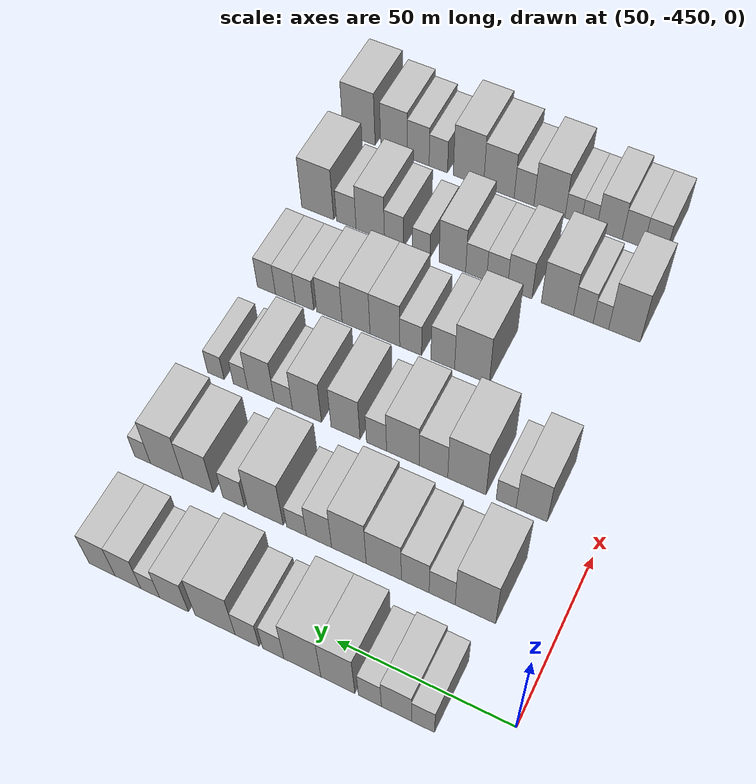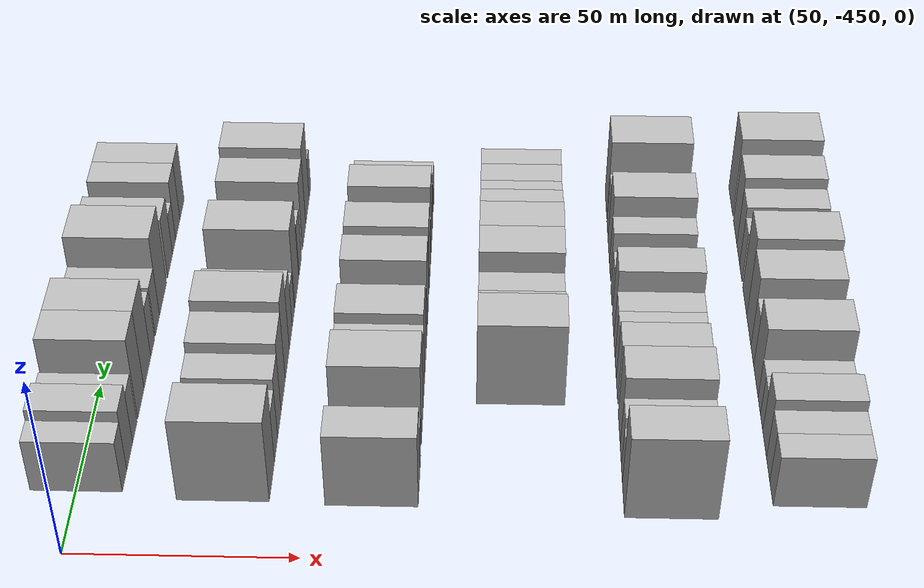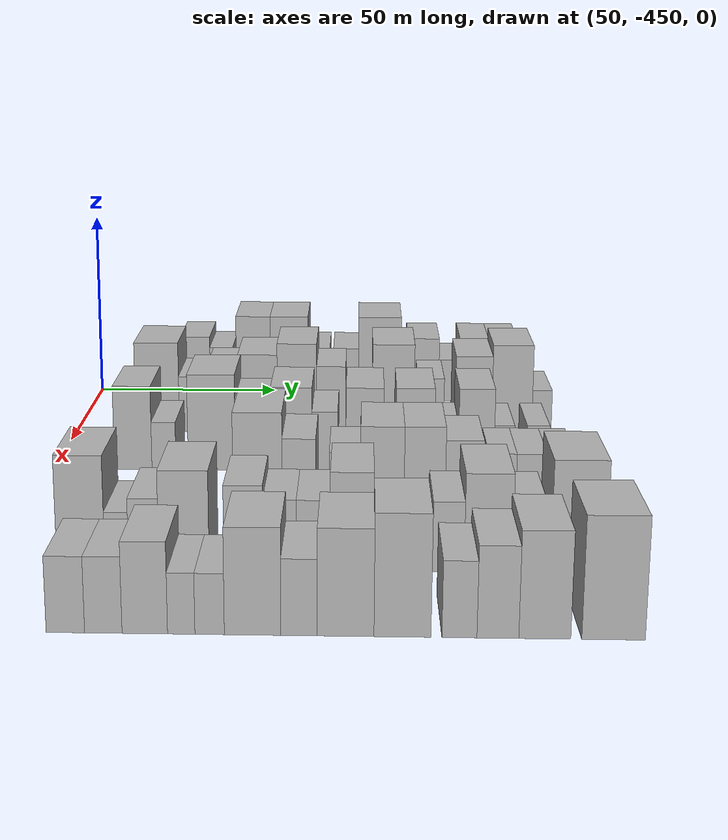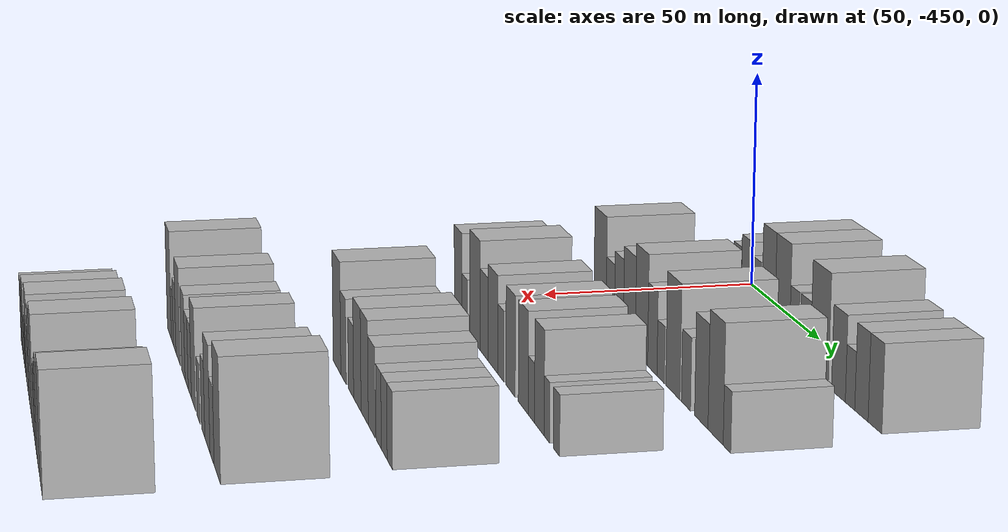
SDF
<sdf version="1.6">
 <world name="default">
  <model name="building_12">
   <static>1</static>
   <pose>50.0000 -429.1963 0 0.000000 0.000000 0.000000</pose>
   <link name="link">
    <pose>0 0 7.50 0 0 0</pose>
    <collision name="collision"><geometry><box><size>20.0000 6.3215 15.0000</size></box></geometry></collision>
    <visual name="visual">
     <cast_shadows>0</cast_shadows>
     <geometry><box><size>20.0000 6.3215 15.0000</size></box></geometry>
     <material>
      <script>
       <uri>model://HANNAS_wall/materials/scripts</uri>
       <uri>model://HANNAS_wall/materials/textures</uri>
       <name>vrc/HANNAS_wall</name>
      </script>
     </material>
    </visual>
   </link>
  </model>
  <model name="building_13">
   <static>1</static>
   <pose>50.0000 -421.8779 0 0.000000 0.000000 0.000000</pose>
   <link name="link">
    <pose>0 0 9.00 0 0 0</pose>
    <collision name="collision"><geometry><box><size>20.0000 8.3153 18.0000</size></box></geometry></collision>
    <visual name="visual">
     <cast_shadows>0</cast_shadows>
     <geometry><box><size>20.0000 8.3153 18.0000</size></box></geometry>
     <material>
      <script>
       <uri>model://HANNAS_wall/materials/scripts</uri>
       <uri>model://HANNAS_wall/materials/textures</uri>
       <name>vrc/HANNAS_wall</name>
      </script>
     </material>
    </visual>
   </link>
  </model>
  <model name="building_14">
   <static>1</static>
   <pose>50.0000 -414.5161 0 0.000000 0.000000 0.000000</pose>
   <link name="link">
    <pose>0 0 7.50 0 0 0</pose>
    <collision name="collision"><geometry><box><size>20.0000 6.4083 15.0000</size></box></geometry></collision>
    <visual name="visual">
     <cast_shadows>0</cast_shadows>
     <geometry><box><size>20.0000 6.4083 15.0000</size></box></geometry>
     <material>
      <script>
       <uri>model://HANNAS_wall/materials/scripts</uri>
       <uri>model://HANNAS_wall/materials/textures</uri>
       <name>vrc/HANNAS_wall</name>
      </script>
     </material>
    </visual>
   </link>
  </model>
  <model name="building_15">
   <static>1</static>
   <pose>50.0000 -405.5095 0 0.000000 0.000000 0.000000</pose>
   <link name="link">
    <pose>0 0 12.00 0 0 0</pose>
    <collision name="collision"><geometry><box><size>20.0000 9.6048 24.0000</size></box></geometry></collision>
    <visual name="visual">
     <cast_shadows>0</cast_shadows>
     <geometry><box><size>20.0000 9.6048 24.0000</size></box></geometry>
     <material>
      <script>
       <uri>model://HANNAS_wall/materials/scripts</uri>
       <uri>model://HANNAS_wall/materials/textures</uri>
       <name>vrc/HANNAS_wall</name>
      </script>
     </material>
    </visual>
   </link>
  </model>
  <model name="building_16">
   <static>1</static>
   <pose>50.0000 -395.4034 0 0.000000 0.000000 0.000000</pose>
   <link name="link">
    <pose>0 0 12.00 0 0 0</pose>
    <collision name="collision"><geometry><box><size>20.0000 10.6074 24.0000</size></box></geometry></collision>
    <visual name="visual">
     <cast_shadows>0</cast_shadows>
     <geometry><box><size>20.0000 10.6074 24.0000</size></box></geometry>
     <material>
      <script>
       <uri>model://HANNAS_wall/materials/scripts</uri>
       <uri>model://HANNAS_wall/materials/textures</uri>
       <name>vrc/HANNAS_wall</name>
      </script>
     </material>
    </visual>
   </link>
  </model>
  <model name="building_17">
   <static>1</static>
   <pose>50.0000 -387.0131 0 0.000000 0.000000 0.000000</pose>
   <link name="link">
    <pose>0 0 7.50 0 0 0</pose>
    <collision name="collision"><geometry><box><size>20.0000 6.1733 15.0000</size></box></geometry></collision>
    <visual name="visual">
     <cast_shadows>0</cast_shadows>
     <geometry><box><size>20.0000 6.1733 15.0000</size></box></geometry>
     <material>
      <script>
       <uri>model://HANNAS_wall/materials/scripts</uri>
       <uri>model://HANNAS_wall/materials/textures</uri>
       <name>vrc/HANNAS_wall</name>
      </script>
     </material>
    </visual>
   </link>
  </model>
  <model name="building_18">
   <static>1</static>
   <pose>50.0000 -379.4041 0 0.000000 0.000000 0.000000</pose>
   <link name="link">
    <pose>0 0 7.50 0 0 0</pose>
    <collision name="collision"><geometry><box><size>20.0000 7.0446 15.0000</size></box></geometry></collision>
    <visual name="visual">
     <cast_shadows>0</cast_shadows>
     <geometry><box><size>20.0000 7.0446 15.0000</size></box></geometry>
     <material>
      <script>
       <uri>model://HANNAS_wall/materials/scripts</uri>
       <uri>model://HANNAS_wall/materials/textures</uri>
       <name>vrc/HANNAS_wall</name>
      </script>
     </material>
    </visual>
   </link>
  </model>
  <model name="building_19">
   <static>1</static>
   <pose>50.0000 -369.9329 0 0.000000 0.000000 0.000000</pose>
   <link name="link">
    <pose>0 0 12.00 0 0 0</pose>
    <collision name="collision"><geometry><box><size>20.0000 11.8979 24.0000</size></box></geometry></collision>
    <visual name="visual">
     <cast_shadows>0</cast_shadows>
     <geometry><box><size>20.0000 11.8979 24.0000</size></box></geometry>
     <material>
      <script>
       <uri>model://HANNAS_wall/materials/scripts</uri>
       <uri>model://HANNAS_wall/materials/textures</uri>
       <name>vrc/HANNAS_wall</name>
      </script>
     </material>
    </visual>
   </link>
  </model>
  <model name="building_20">
   <static>1</static>
   <pose>50.0000 -357.6337 0 0.000000 0.000000 0.000000</pose>
   <link name="link">
    <pose>0 0 9.00 0 0 0</pose>
    <collision name="collision"><geometry><box><size>20.0000 8.7006 18.0000</size></box></geometry></collision>
    <visual name="visual">
     <cast_shadows>0</cast_shadows>
     <geometry><box><size>20.0000 8.7006 18.0000</size></box></geometry>
     <material>
      <script>
       <uri>model://HANNAS_wall/materials/scripts</uri>
       <uri>model://HANNAS_wall/materials/textures</uri>
       <name>vrc/HANNAS_wall</name>
      </script>
     </material>
    </visual>
   </link>
  </model>
  <model name="building_21">
   <static>1</static>
   <pose>50.0000 -350.4063 0 0.000000 0.000000 0.000000</pose>
   <link name="link">
    <pose>0 0 6.00 0 0 0</pose>
    <collision name="collision"><geometry><box><size>20.0000 5.7541 12.0000</size></box></geometry></collision>
    <visual name="visual">
     <cast_shadows>0</cast_shadows>
     <geometry><box><size>20.0000 5.7541 12.0000</size></box></geometry>
     <material>
      <script>
       <uri>model://HANNAS_wall/materials/scripts</uri>
       <uri>model://HANNAS_wall/materials/textures</uri>
       <name>vrc/HANNAS_wall</name>
      </script>
     </material>
    </visual>
   </link>
  </model>
  <model name="building_22">
   <static>1</static>
   <pose>50.0000 -343.5620 0 0.000000 0.000000 0.000000</pose>
   <link name="link">
    <pose>0 0 9.00 0 0 0</pose>
    <collision name="collision"><geometry><box><size>20.0000 7.9346 18.0000</size></box></geometry></collision>
    <visual name="visual">
     <cast_shadows>0</cast_shadows>
     <geometry><box><size>20.0000 7.9346 18.0000</size></box></geometry>
     <material>
      <script>
       <uri>model://HANNAS_wall/materials/scripts</uri>
       <uri>model://HANNAS_wall/materials/textures</uri>
       <name>vrc/HANNAS_wall</name>
      </script>
     </material>
    </visual>
   </link>
  </model>
  <model name="building_23">
   <static>1</static>
   <pose>50.0000 -335.5840 0 0.000000 0.000000 0.000000</pose>
   <link name="link">
    <pose>0 0 9.00 0 0 0</pose>
    <collision name="collision"><geometry><box><size>20.0000 8.0214 18.0000</size></box></geometry></collision>
    <visual name="visual">
     <cast_shadows>0</cast_shadows>
     <geometry><box><size>20.0000 8.0214 18.0000</size></box></geometry>
     <material>
      <script>
       <uri>model://HANNAS_wall/materials/scripts</uri>
       <uri>model://HANNAS_wall/materials/textures</uri>
       <name>vrc/HANNAS_wall</name>
      </script>
     </material>
    </visual>
   </link>
  </model>
  <model name="building_135">
   <static>1</static>
   <pose>82.0000 -428.6539 0 0.000000 0.000000 0.000000</pose>
   <link name="link">
    <pose>0 0 12.00 0 0 0</pose>
    <collision name="collision"><geometry><box><size>20.0000 11.5081 24.0000</size></box></geometry></collision>
    <visual name="visual">
     <cast_shadows>0</cast_shadows>
     <geometry><box><size>20.0000 11.5081 24.0000</size></box></geometry>
     <material>
      <script>
       <uri>model://HANNAS_wall/materials/scripts</uri>
       <uri>model://HANNAS_wall/materials/textures</uri>
       <name>vrc/HANNAS_wall</name>
      </script>
     </material>
    </visual>
   </link>
  </model>
  <model name="building_136">
   <static>1</static>
   <pose>82.0000 -419.1675 0 0.000000 0.000000 0.000000</pose>
   <link name="link">
    <pose>0 0 7.50 0 0 0</pose>
    <collision name="collision"><geometry><box><size>20.0000 7.4648 15.0000</size></box></geometry></collision>
    <visual name="visual">
     <cast_shadows>0</cast_shadows>
     <geometry><box><size>20.0000 7.4648 15.0000</size></box></geometry>
     <material>
      <script>
       <uri>model://HANNAS_wall/materials/scripts</uri>
       <uri>model://HANNAS_wall/materials/textures</uri>
       <name>vrc/HANNAS_wall</name>
      </script>
     </material>
    </visual>
   </link>
  </model>
  <model name="building_137">
   <static>1</static>
   <pose>82.0000 -411.4044 0 0.000000 0.000000 0.000000</pose>
   <link name="link">
    <pose>0 0 9.00 0 0 0</pose>
    <collision name="collision"><geometry><box><size>20.0000 8.0614 18.0000</size></box></geometry></collision>
    <visual name="visual">
     <cast_shadows>0</cast_shadows>
     <geometry><box><size>20.0000 8.0614 18.0000</size></box></geometry>
     <material>
      <script>
       <uri>model://HANNAS_wall/materials/scripts</uri>
       <uri>model://HANNAS_wall/materials/textures</uri>
       <name>vrc/HANNAS_wall</name>
      </script>
     </material>
    </visual>
   </link>
  </model>
  <model name="building_138">
   <static>1</static>
   <pose>82.0000 -402.2185 0 0.000000 0.000000 0.000000</pose>
   <link name="link">
    <pose>0 0 10.50 0 0 0</pose>
    <collision name="collision"><geometry><box><size>20.0000 10.3103 21.0000</size></box></geometry></collision>
    <visual name="visual">
     <cast_shadows>0</cast_shadows>
     <geometry><box><size>20.0000 10.3103 21.0000</size></box></geometry>
     <material>
      <script>
       <uri>model://HANNAS_wall/materials/scripts</uri>
       <uri>model://HANNAS_wall/materials/textures</uri>
       <name>vrc/HANNAS_wall</name>
      </script>
     </material>
    </visual>
   </link>
  </model>
  <model name="building_139">
   <static>1</static>
   <pose>82.0000 -391.9085 0 0.000000 0.000000 0.000000</pose>
   <link name="link">
    <pose>0 0 12.00 0 0 0</pose>
    <collision name="collision"><geometry><box><size>20.0000 10.3097 24.0000</size></box></geometry></collision>
    <visual name="visual">
     <cast_shadows>0</cast_shadows>
     <geometry><box><size>20.0000 10.3097 24.0000</size></box></geometry>
     <material>
      <script>
       <uri>model://HANNAS_wall/materials/scripts</uri>
       <uri>model://HANNAS_wall/materials/textures</uri>
       <name>vrc/HANNAS_wall</name>
      </script>
     </material>
    </visual>
   </link>
  </model>
  <model name="building_140">
   <static>1</static>
   <pose>82.0000 -382.9541 0 0.000000 0.000000 0.000000</pose>
   <link name="link">
    <pose>0 0 9.00 0 0 0</pose>
    <collision name="collision"><geometry><box><size>20.0000 7.5991 18.0000</size></box></geometry></collision>
    <visual name="visual">
     <cast_shadows>0</cast_shadows>
     <geometry><box><size>20.0000 7.5991 18.0000</size></box></geometry>
     <material>
      <script>
       <uri>model://HANNAS_wall/materials/scripts</uri>
       <uri>model://HANNAS_wall/materials/textures</uri>
       <name>vrc/HANNAS_wall</name>
      </script>
     </material>
    </visual>
   </link>
  </model>
  <model name="building_141">
   <static>1</static>
   <pose>82.0000 -376.1549 0 0.000000 0.000000 0.000000</pose>
   <link name="link">
    <pose>0 0 6.00 0 0 0</pose>
    <collision name="collision"><geometry><box><size>20.0000 5.9994 12.0000</size></box></geometry></collision>
    <visual name="visual">
     <cast_shadows>0</cast_shadows>
     <geometry><box><size>20.0000 5.9994 12.0000</size></box></geometry>
     <material>
      <script>
       <uri>model://HANNAS_wall/materials/scripts</uri>
       <uri>model://HANNAS_wall/materials/textures</uri>
       <name>vrc/HANNAS_wall</name>
      </script>
     </material>
    </visual>
   </link>
  </model>
  <model name="building_142">
   <static>1</static>
   <pose>82.0000 -366.6918 0 0.000000 0.000000 0.000000</pose>
   <link name="link">
    <pose>0 0 12.00 0 0 0</pose>
    <collision name="collision"><geometry><box><size>20.0000 10.9269 24.0000</size></box></geometry></collision>
    <visual name="visual">
     <cast_shadows>0</cast_shadows>
     <geometry><box><size>20.0000 10.9269 24.0000</size></box></geometry>
     <material>
      <script>
       <uri>model://HANNAS_wall/materials/scripts</uri>
       <uri>model://HANNAS_wall/materials/textures</uri>
       <name>vrc/HANNAS_wall</name>
      </script>
     </material>
    </visual>
   </link>
  </model>
  <model name="building_143">
   <static>1</static>
   <pose>82.0000 -356.8459 0 0.000000 0.000000 0.000000</pose>
   <link name="link">
    <pose>0 0 7.50 0 0 0</pose>
    <collision name="collision"><geometry><box><size>20.0000 6.7649 15.0000</size></box></geometry></collision>
    <visual name="visual">
     <cast_shadows>0</cast_shadows>
     <geometry><box><size>20.0000 6.7649 15.0000</size></box></geometry>
     <material>
      <script>
       <uri>model://HANNAS_wall/materials/scripts</uri>
       <uri>model://HANNAS_wall/materials/textures</uri>
       <name>vrc/HANNAS_wall</name>
      </script>
     </material>
    </visual>
   </link>
  </model>
  <model name="building_144">
   <static>1</static>
   <pose>82.0000 -345.6927 0 0.000000 0.000000 0.000000</pose>
   <link name="link">
    <pose>0 0 10.50 0 0 0</pose>
    <collision name="collision"><geometry><box><size>20.0000 9.5417 21.0000</size></box></geometry></collision>
    <visual name="visual">
     <cast_shadows>0</cast_shadows>
     <geometry><box><size>20.0000 9.5417 21.0000</size></box></geometry>
     <material>
      <script>
       <uri>model://HANNAS_wall/materials/scripts</uri>
       <uri>model://HANNAS_wall/materials/textures</uri>
       <name>vrc/HANNAS_wall</name>
      </script>
     </material>
    </visual>
   </link>
  </model>
  <model name="building_145">
   <static>1</static>
   <pose>82.0000 -335.6916 0 0.000000 0.000000 0.000000</pose>
   <link name="link">
    <pose>0 0 12.00 0 0 0</pose>
    <collision name="collision"><geometry><box><size>20.0000 10.4604 24.0000</size></box></geometry></collision>
    <visual name="visual">
     <cast_shadows>0</cast_shadows>
     <geometry><box><size>20.0000 10.4604 24.0000</size></box></geometry>
     <material>
      <script>
       <uri>model://HANNAS_wall/materials/scripts</uri>
       <uri>model://HANNAS_wall/materials/textures</uri>
       <name>vrc/HANNAS_wall</name>
      </script>
     </material>
    </visual>
   </link>
  </model>
  <model name="building_146">
   <static>1</static>
   <pose>82.0000 -327.9243 0 0.000000 0.000000 0.000000</pose>
   <link name="link">
    <pose>0 0 6.00 0 0 0</pose>
    <collision name="collision"><geometry><box><size>20.0000 5.0742 12.0000</size></box></geometry></collision>
    <visual name="visual">
     <cast_shadows>0</cast_shadows>
     <geometry><box><size>20.0000 5.0742 12.0000</size></box></geometry>
     <material>
      <script>
       <uri>model://HANNAS_wall/materials/scripts</uri>
       <uri>model://HANNAS_wall/materials/textures</uri>
       <name>vrc/HANNAS_wall</name>
      </script>
     </material>
    </visual>
   </link>
  </model>
  <model name="building_257">
   <static>1</static>
   <pose>114.0000 -430.5533 0 0.000000 0.000000 0.000000</pose>
   <link name="link">
    <pose>0 0 10.50 0 0 0</pose>
    <collision name="collision"><geometry><box><size>20.0000 9.1401 21.0000</size></box></geometry></collision>
    <visual name="visual">
     <cast_shadows>0</cast_shadows>
     <geometry><box><size>20.0000 9.1401 21.0000</size></box></geometry>
     <material>
      <script>
       <uri>model://HANNAS_wall/materials/scripts</uri>
       <uri>model://HANNAS_wall/materials/textures</uri>
       <name>vrc/HANNAS_wall</name>
      </script>
     </material>
    </visual>
   </link>
  </model>
  <model name="building_258">
   <static>1</static>
   <pose>114.0000 -423.0463 0 0.000000 0.000000 0.000000</pose>
   <link name="link">
    <pose>0 0 6.00 0 0 0</pose>
    <collision name="collision"><geometry><box><size>20.0000 5.8737 12.0000</size></box></geometry></collision>
    <visual name="visual">
     <cast_shadows>0</cast_shadows>
     <geometry><box><size>20.0000 5.8737 12.0000</size></box></geometry>
     <material>
      <script>
       <uri>model://HANNAS_wall/materials/scripts</uri>
       <uri>model://HANNAS_wall/materials/textures</uri>
       <name>vrc/HANNAS_wall</name>
      </script>
     </material>
    </visual>
   </link>
  </model>
  <model name="building_259">
   <static>1</static>
   <pose>114.0000 -411.3610 0 0.000000 0.000000 0.000000</pose>
   <link name="link">
    <pose>0 0 12.00 0 0 0</pose>
    <collision name="collision"><geometry><box><size>20.0000 11.4968 24.0000</size></box></geometry></collision>
    <visual name="visual">
     <cast_shadows>0</cast_shadows>
     <geometry><box><size>20.0000 11.4968 24.0000</size></box></geometry>
     <material>
      <script>
       <uri>model://HANNAS_wall/materials/scripts</uri>
       <uri>model://HANNAS_wall/materials/textures</uri>
       <name>vrc/HANNAS_wall</name>
      </script>
     </material>
    </visual>
   </link>
  </model>
  <model name="building_260">
   <static>1</static>
   <pose>114.0000 -401.2925 0 0.000000 0.000000 0.000000</pose>
   <link name="link">
    <pose>0 0 9.00 0 0 0</pose>
    <collision name="collision"><geometry><box><size>20.0000 8.6402 18.0000</size></box></geometry></collision>
    <visual name="visual">
     <cast_shadows>0</cast_shadows>
     <geometry><box><size>20.0000 8.6402 18.0000</size></box></geometry>
     <material>
      <script>
       <uri>model://HANNAS_wall/materials/scripts</uri>
       <uri>model://HANNAS_wall/materials/textures</uri>
       <name>vrc/HANNAS_wall</name>
      </script>
     </material>
    </visual>
   </link>
  </model>
  <model name="building_261">
   <static>1</static>
   <pose>114.0000 -391.9645 0 0.000000 0.000000 0.000000</pose>
   <link name="link">
    <pose>0 0 10.50 0 0 0</pose>
    <collision name="collision"><geometry><box><size>20.0000 10.0158 21.0000</size></box></geometry></collision>
    <visual name="visual">
     <cast_shadows>0</cast_shadows>
     <geometry><box><size>20.0000 10.0158 21.0000</size></box></geometry>
     <material>
      <script>
       <uri>model://HANNAS_wall/materials/scripts</uri>
       <uri>model://HANNAS_wall/materials/textures</uri>
       <name>vrc/HANNAS_wall</name>
      </script>
     </material>
    </visual>
   </link>
  </model>
  <model name="building_262">
   <static>1</static>
   <pose>114.0000 -383.8403 0 0.000000 0.000000 0.000000</pose>
   <link name="link">
    <pose>0 0 7.50 0 0 0</pose>
    <collision name="collision"><geometry><box><size>20.0000 6.2326 15.0000</size></box></geometry></collision>
    <visual name="visual">
     <cast_shadows>0</cast_shadows>
     <geometry><box><size>20.0000 6.2326 15.0000</size></box></geometry>
     <material>
      <script>
       <uri>model://HANNAS_wall/materials/scripts</uri>
       <uri>model://HANNAS_wall/materials/textures</uri>
       <name>vrc/HANNAS_wall</name>
      </script>
     </material>
    </visual>
   </link>
  </model>
  <model name="building_263">
   <static>1</static>
   <pose>114.0000 -374.1591 0 0.000000 0.000000 0.000000</pose>
   <link name="link">
    <pose>0 0 10.50 0 0 0</pose>
    <collision name="collision"><geometry><box><size>20.0000 9.1299 21.0000</size></box></geometry></collision>
    <visual name="visual">
     <cast_shadows>0</cast_shadows>
     <geometry><box><size>20.0000 9.1299 21.0000</size></box></geometry>
     <material>
      <script>
       <uri>model://HANNAS_wall/materials/scripts</uri>
       <uri>model://HANNAS_wall/materials/textures</uri>
       <name>vrc/HANNAS_wall</name>
      </script>
     </material>
    </visual>
   </link>
  </model>
  <model name="building_264">
   <static>1</static>
   <pose>114.0000 -361.9577 0 0.000000 0.000000 0.000000</pose>
   <link name="link">
    <pose>0 0 10.50 0 0 0</pose>
    <collision name="collision"><geometry><box><size>20.0000 9.2729 21.0000</size></box></geometry></collision>
    <visual name="visual">
     <cast_shadows>0</cast_shadows>
     <geometry><box><size>20.0000 9.2729 21.0000</size></box></geometry>
     <material>
      <script>
       <uri>model://HANNAS_wall/materials/scripts</uri>
       <uri>model://HANNAS_wall/materials/textures</uri>
       <name>vrc/HANNAS_wall</name>
      </script>
     </material>
    </visual>
   </link>
  </model>
  <model name="building_265">
   <static>1</static>
   <pose>114.0000 -354.4246 0 0.000000 0.000000 0.000000</pose>
   <link name="link">
    <pose>0 0 6.00 0 0 0</pose>
    <collision name="collision"><geometry><box><size>20.0000 5.7931 12.0000</size></box></geometry></collision>
    <visual name="visual">
     <cast_shadows>0</cast_shadows>
     <geometry><box><size>20.0000 5.7931 12.0000</size></box></geometry>
     <material>
      <script>
       <uri>model://HANNAS_wall/materials/scripts</uri>
       <uri>model://HANNAS_wall/materials/textures</uri>
       <name>vrc/HANNAS_wall</name>
      </script>
     </material>
    </visual>
   </link>
  </model>
  <model name="building_266">
   <static>1</static>
   <pose>114.0000 -347.2264 0 0.000000 0.000000 0.000000</pose>
   <link name="link">
    <pose>0 0 10.50 0 0 0</pose>
    <collision name="collision"><geometry><box><size>20.0000 8.6033 21.0000</size></box></geometry></collision>
    <visual name="visual">
     <cast_shadows>0</cast_shadows>
     <geometry><box><size>20.0000 8.6033 21.0000</size></box></geometry>
     <material>
      <script>
       <uri>model://HANNAS_wall/materials/scripts</uri>
       <uri>model://HANNAS_wall/materials/textures</uri>
       <name>vrc/HANNAS_wall</name>
      </script>
     </material>
    </visual>
   </link>
  </model>
  <model name="building_267">
   <static>1</static>
   <pose>114.0000 -340.5179 0 0.000000 0.000000 0.000000</pose>
   <link name="link">
    <pose>0 0 6.00 0 0 0</pose>
    <collision name="collision"><geometry><box><size>20.0000 4.8137 12.0000</size></box></geometry></collision>
    <visual name="visual">
     <cast_shadows>0</cast_shadows>
     <geometry><box><size>20.0000 4.8137 12.0000</size></box></geometry>
     <material>
      <script>
       <uri>model://HANNAS_wall/materials/scripts</uri>
       <uri>model://HANNAS_wall/materials/textures</uri>
       <name>vrc/HANNAS_wall</name>
      </script>
     </material>
    </visual>
   </link>
  </model>
  <model name="building_268">
   <static>1</static>
   <pose>114.0000 -332.3845 0 0.000000 0.000000 0.000000</pose>
   <link name="link">
    <pose>0 0 6.00 0 0 0</pose>
    <collision name="collision"><geometry><box><size>20.0000 5.4530 12.0000</size></box></geometry></collision>
    <visual name="visual">
     <cast_shadows>0</cast_shadows>
     <geometry><box><size>20.0000 5.4530 12.0000</size></box></geometry>
     <material>
      <script>
       <uri>model://HANNAS_wall/materials/scripts</uri>
       <uri>model://HANNAS_wall/materials/textures</uri>
       <name>vrc/HANNAS_wall</name>
      </script>
     </material>
    </visual>
   </link>
  </model>
  <model name="building_374">
   <static>1</static>
   <pose>146.0000 -398.0932 0 0.000000 0.000000 0.000000</pose>
   <link name="link">
    <pose>0 0 12.00 0 0 0</pose>
    <collision name="collision"><geometry><box><size>20.0000 10.9487 24.0000</size></box></geometry></collision>
    <visual name="visual">
     <cast_shadows>0</cast_shadows>
     <geometry><box><size>20.0000 10.9487 24.0000</size></box></geometry>
     <material>
      <script>
       <uri>model://HANNAS_wall/materials/scripts</uri>
       <uri>model://HANNAS_wall/materials/textures</uri>
       <name>vrc/HANNAS_wall</name>
      </script>
     </material>
    </visual>
   </link>
  </model>
  <model name="building_375">
   <static>1</static>
   <pose>146.0000 -388.8633 0 0.000000 0.000000 0.000000</pose>
   <link name="link">
    <pose>0 0 9.00 0 0 0</pose>
    <collision name="collision"><geometry><box><size>20.0000 7.5111 18.0000</size></box></geometry></collision>
    <visual name="visual">
     <cast_shadows>0</cast_shadows>
     <geometry><box><size>20.0000 7.5111 18.0000</size></box></geometry>
     <material>
      <script>
       <uri>model://HANNAS_wall/materials/scripts</uri>
       <uri>model://HANNAS_wall/materials/textures</uri>
       <name>vrc/HANNAS_wall</name>
      </script>
     </material>
    </visual>
   </link>
  </model>
  <model name="building_376">
   <static>1</static>
   <pose>146.0000 -378.6182 0 0.000000 0.000000 0.000000</pose>
   <link name="link">
    <pose>0 0 7.50 0 0 0</pose>
    <collision name="collision"><geometry><box><size>20.0000 6.9792 15.0000</size></box></geometry></collision>
    <visual name="visual">
     <cast_shadows>0</cast_shadows>
     <geometry><box><size>20.0000 6.9792 15.0000</size></box></geometry>
     <material>
      <script>
       <uri>model://HANNAS_wall/materials/scripts</uri>
       <uri>model://HANNAS_wall/materials/textures</uri>
       <name>vrc/HANNAS_wall</name>
      </script>
     </material>
    </visual>
   </link>
  </model>
  <model name="building_377">
   <static>1</static>
   <pose>146.0000 -370.2852 0 0.000000 0.000000 0.000000</pose>
   <link name="link">
    <pose>0 0 10.50 0 0 0</pose>
    <collision name="collision"><geometry><box><size>20.0000 9.6868 21.0000</size></box></geometry></collision>
    <visual name="visual">
     <cast_shadows>0</cast_shadows>
     <geometry><box><size>20.0000 9.6868 21.0000</size></box></geometry>
     <material>
      <script>
       <uri>model://HANNAS_wall/materials/scripts</uri>
       <uri>model://HANNAS_wall/materials/textures</uri>
       <name>vrc/HANNAS_wall</name>
      </script>
     </material>
    </visual>
   </link>
  </model>
  <model name="building_378">
   <static>1</static>
   <pose>146.0000 -360.8754 0 0.000000 0.000000 0.000000</pose>
   <link name="link">
    <pose>0 0 10.50 0 0 0</pose>
    <collision name="collision"><geometry><box><size>20.0000 9.1327 21.0000</size></box></geometry></collision>
    <visual name="visual">
     <cast_shadows>0</cast_shadows>
     <geometry><box><size>20.0000 9.1327 21.0000</size></box></geometry>
     <material>
      <script>
       <uri>model://HANNAS_wall/materials/scripts</uri>
       <uri>model://HANNAS_wall/materials/textures</uri>
       <name>vrc/HANNAS_wall</name>
      </script>
     </material>
    </visual>
   </link>
  </model>
  <model name="building_379">
   <static>1</static>
   <pose>146.0000 -352.0877 0 0.000000 0.000000 0.000000</pose>
   <link name="link">
    <pose>0 0 9.00 0 0 0</pose>
    <collision name="collision"><geometry><box><size>20.0000 8.4426 18.0000</size></box></geometry></collision>
    <visual name="visual">
     <cast_shadows>0</cast_shadows>
     <geometry><box><size>20.0000 8.4426 18.0000</size></box></geometry>
     <material>
      <script>
       <uri>model://HANNAS_wall/materials/scripts</uri>
       <uri>model://HANNAS_wall/materials/textures</uri>
       <name>vrc/HANNAS_wall</name>
      </script>
     </material>
    </visual>
   </link>
  </model>
  <model name="building_380">
   <static>1</static>
   <pose>146.0000 -343.7599 0 0.000000 0.000000 0.000000</pose>
   <link name="link">
    <pose>0 0 7.50 0 0 0</pose>
    <collision name="collision"><geometry><box><size>20.0000 6.2130 15.0000</size></box></geometry></collision>
    <visual name="visual">
     <cast_shadows>0</cast_shadows>
     <geometry><box><size>20.0000 6.2130 15.0000</size></box></geometry>
     <material>
      <script>
       <uri>model://HANNAS_wall/materials/scripts</uri>
       <uri>model://HANNAS_wall/materials/textures</uri>
       <name>vrc/HANNAS_wall</name>
      </script>
     </material>
    </visual>
   </link>
  </model>
  <model name="building_381">
   <static>1</static>
   <pose>146.0000 -337.2980 0 0.000000 0.000000 0.000000</pose>
   <link name="link">
    <pose>0 0 7.50 0 0 0</pose>
    <collision name="collision"><geometry><box><size>20.0000 6.7107 15.0000</size></box></geometry></collision>
    <visual name="visual">
     <cast_shadows>0</cast_shadows>
     <geometry><box><size>20.0000 6.7107 15.0000</size></box></geometry>
     <material>
      <script>
       <uri>model://HANNAS_wall/materials/scripts</uri>
       <uri>model://HANNAS_wall/materials/textures</uri>
       <name>vrc/HANNAS_wall</name>
      </script>
     </material>
    </visual>
   </link>
  </model>
  <model name="building_382">
   <static>1</static>
   <pose>146.0000 -330.8778 0 0.000000 0.000000 0.000000</pose>
   <link name="link">
    <pose>0 0 7.50 0 0 0</pose>
    <collision name="collision"><geometry><box><size>20.0000 6.1298 15.0000</size></box></geometry></collision>
    <visual name="visual">
     <cast_shadows>0</cast_shadows>
     <geometry><box><size>20.0000 6.1298 15.0000</size></box></geometry>
     <material>
      <script>
       <uri>model://HANNAS_wall/materials/scripts</uri>
       <uri>model://HANNAS_wall/materials/textures</uri>
       <name>vrc/HANNAS_wall</name>
      </script>
     </material>
    </visual>
   </link>
  </model>
  <model name="building_494">
   <static>1</static>
   <pose>178.0000 -432.1652 0 0.000000 0.000000 0.000000</pose>
   <link name="link">
    <pose>0 0 12.00 0 0 0</pose>
    <collision name="collision"><geometry><box><size>20.0000 9.8747 24.0000</size></box></geometry></collision>
    <visual name="visual">
     <cast_shadows>0</cast_shadows>
     <geometry><box><size>20.0000 9.8747 24.0000</size></box></geometry>
     <material>
      <script>
       <uri>model://HANNAS_wall/materials/scripts</uri>
       <uri>model://HANNAS_wall/materials/textures</uri>
       <name>vrc/HANNAS_wall</name>
      </script>
     </material>
    </visual>
   </link>
  </model>
  <model name="building_495">
   <static>1</static>
   <pose>178.0000 -424.7996 0 0.000000 0.000000 0.000000</pose>
   <link name="link">
    <pose>0 0 6.00 0 0 0</pose>
    <collision name="collision"><geometry><box><size>20.0000 4.8564 12.0000</size></box></geometry></collision>
    <visual name="visual">
     <cast_shadows>0</cast_shadows>
     <geometry><box><size>20.0000 4.8564 12.0000</size></box></geometry>
     <material>
      <script>
       <uri>model://HANNAS_wall/materials/scripts</uri>
       <uri>model://HANNAS_wall/materials/textures</uri>
       <name>vrc/HANNAS_wall</name>
      </script>
     </material>
    </visual>
   </link>
  </model>
  <model name="building_496">
   <static>1</static>
   <pose>178.0000 -419.2694 0 0.000000 0.000000 0.000000</pose>
   <link name="link">
    <pose>0 0 7.50 0 0 0</pose>
    <collision name="collision"><geometry><box><size>20.0000 6.2040 15.0000</size></box></geometry></collision>
    <visual name="visual">
     <cast_shadows>0</cast_shadows>
     <geometry><box><size>20.0000 6.2040 15.0000</size></box></geometry>
     <material>
      <script>
       <uri>model://HANNAS_wall/materials/scripts</uri>
       <uri>model://HANNAS_wall/materials/textures</uri>
       <name>vrc/HANNAS_wall</name>
      </script>
     </material>
    </visual>
   </link>
  </model>
  <model name="building_497">
   <static>1</static>
   <pose>178.0000 -411.0218 0 0.000000 0.000000 0.000000</pose>
   <link name="link">
    <pose>0 0 10.50 0 0 0</pose>
    <collision name="collision"><geometry><box><size>20.0000 10.2913 21.0000</size></box></geometry></collision>
    <visual name="visual">
     <cast_shadows>0</cast_shadows>
     <geometry><box><size>20.0000 10.2913 21.0000</size></box></geometry>
     <material>
      <script>
       <uri>model://HANNAS_wall/materials/scripts</uri>
       <uri>model://HANNAS_wall/materials/textures</uri>
       <name>vrc/HANNAS_wall</name>
      </script>
     </material>
    </visual>
   </link>
  </model>
  <model name="building_498">
   <static>1</static>
   <pose>178.0000 -398.9058 0 0.000000 0.000000 0.000000</pose>
   <link name="link">
    <pose>0 0 9.00 0 0 0</pose>
    <collision name="collision"><geometry><box><size>20.0000 7.9407 18.0000</size></box></geometry></collision>
    <visual name="visual">
     <cast_shadows>0</cast_shadows>
     <geometry><box><size>20.0000 7.9407 18.0000</size></box></geometry>
     <material>
      <script>
       <uri>model://HANNAS_wall/materials/scripts</uri>
       <uri>model://HANNAS_wall/materials/textures</uri>
       <name>vrc/HANNAS_wall</name>
      </script>
     </material>
    </visual>
   </link>
  </model>
  <model name="building_499">
   <static>1</static>
   <pose>178.0000 -391.5233 0 0.000000 0.000000 0.000000</pose>
   <link name="link">
    <pose>0 0 7.50 0 0 0</pose>
    <collision name="collision"><geometry><box><size>20.0000 6.8241 15.0000</size></box></geometry></collision>
    <visual name="visual">
     <cast_shadows>0</cast_shadows>
     <geometry><box><size>20.0000 6.8241 15.0000</size></box></geometry>
     <material>
      <script>
       <uri>model://HANNAS_wall/materials/scripts</uri>
       <uri>model://HANNAS_wall/materials/textures</uri>
       <name>vrc/HANNAS_wall</name>
      </script>
     </material>
    </visual>
   </link>
  </model>
  <model name="building_500">
   <static>1</static>
   <pose>178.0000 -384.6755 0 0.000000 0.000000 0.000000</pose>
   <link name="link">
    <pose>0 0 7.50 0 0 0</pose>
    <collision name="collision"><geometry><box><size>20.0000 6.8715 15.0000</size></box></geometry></collision>
    <visual name="visual">
     <cast_shadows>0</cast_shadows>
     <geometry><box><size>20.0000 6.8715 15.0000</size></box></geometry>
     <material>
      <script>
       <uri>model://HANNAS_wall/materials/scripts</uri>
       <uri>model://HANNAS_wall/materials/textures</uri>
       <name>vrc/HANNAS_wall</name>
      </script>
     </material>
    </visual>
   </link>
  </model>
  <model name="building_501">
   <static>1</static>
   <pose>178.0000 -376.8205 0 0.000000 0.000000 0.000000</pose>
   <link name="link">
    <pose>0 0 10.50 0 0 0</pose>
    <collision name="collision"><geometry><box><size>20.0000 8.8385 21.0000</size></box></geometry></collision>
    <visual name="visual">
     <cast_shadows>0</cast_shadows>
     <geometry><box><size>20.0000 8.8385 21.0000</size></box></geometry>
     <material>
      <script>
       <uri>model://HANNAS_wall/materials/scripts</uri>
       <uri>model://HANNAS_wall/materials/textures</uri>
       <name>vrc/HANNAS_wall</name>
      </script>
     </material>
    </visual>
   </link>
  </model>
  <model name="building_502">
   <static>1</static>
   <pose>178.0000 -366.4363 0 0.000000 0.000000 0.000000</pose>
   <link name="link">
    <pose>0 0 6.00 0 0 0</pose>
    <collision name="collision"><geometry><box><size>20.0000 5.9299 12.0000</size></box></geometry></collision>
    <visual name="visual">
     <cast_shadows>0</cast_shadows>
     <geometry><box><size>20.0000 5.9299 12.0000</size></box></geometry>
     <material>
      <script>
       <uri>model://HANNAS_wall/materials/scripts</uri>
       <uri>model://HANNAS_wall/materials/textures</uri>
       <name>vrc/HANNAS_wall</name>
      </script>
     </material>
    </visual>
   </link>
  </model>
  <model name="building_503">
   <static>1</static>
   <pose>178.0000 -357.2514 0 0.000000 0.000000 0.000000</pose>
   <link name="link">
    <pose>0 0 7.50 0 0 0</pose>
    <collision name="collision"><geometry><box><size>20.0000 6.4398 15.0000</size></box></geometry></collision>
    <visual name="visual">
     <cast_shadows>0</cast_shadows>
     <geometry><box><size>20.0000 6.4398 15.0000</size></box></geometry>
     <material>
      <script>
       <uri>model://HANNAS_wall/materials/scripts</uri>
       <uri>model://HANNAS_wall/materials/textures</uri>
       <name>vrc/HANNAS_wall</name>
      </script>
     </material>
    </visual>
   </link>
  </model>
  <model name="building_504">
   <static>1</static>
   <pose>178.0000 -349.1529 0 0.000000 0.000000 0.000000</pose>
   <link name="link">
    <pose>0 0 10.50 0 0 0</pose>
    <collision name="collision"><geometry><box><size>20.0000 9.7573 21.0000</size></box></geometry></collision>
    <visual name="visual">
     <cast_shadows>0</cast_shadows>
     <geometry><box><size>20.0000 9.7573 21.0000</size></box></geometry>
     <material>
      <script>
       <uri>model://HANNAS_wall/materials/scripts</uri>
       <uri>model://HANNAS_wall/materials/textures</uri>
       <name>vrc/HANNAS_wall</name>
      </script>
     </material>
    </visual>
   </link>
  </model>
  <model name="building_505">
   <static>1</static>
   <pose>178.0000 -340.9100 0 0.000000 0.000000 0.000000</pose>
   <link name="link">
    <pose>0 0 7.50 0 0 0</pose>
    <collision name="collision"><geometry><box><size>20.0000 6.7284 15.0000</size></box></geometry></collision>
    <visual name="visual">
     <cast_shadows>0</cast_shadows>
     <geometry><box><size>20.0000 6.7284 15.0000</size></box></geometry>
     <material>
      <script>
       <uri>model://HANNAS_wall/materials/scripts</uri>
       <uri>model://HANNAS_wall/materials/textures</uri>
       <name>vrc/HANNAS_wall</name>
      </script>
     </material>
    </visual>
   </link>
  </model>
  <model name="building_506">
   <static>1</static>
   <pose>178.0000 -330.9495 0 0.000000 0.000000 0.000000</pose>
   <link name="link">
    <pose>0 0 12.00 0 0 0</pose>
    <collision name="collision"><geometry><box><size>20.0000 11.1927 24.0000</size></box></geometry></collision>
    <visual name="visual">
     <cast_shadows>0</cast_shadows>
     <geometry><box><size>20.0000 11.1927 24.0000</size></box></geometry>
     <material>
      <script>
       <uri>model://HANNAS_wall/materials/scripts</uri>
       <uri>model://HANNAS_wall/materials/textures</uri>
       <name>vrc/HANNAS_wall</name>
      </script>
     </material>
    </visual>
   </link>
  </model>
  <model name="building_613">
   <static>1</static>
   <pose>210.0000 -429.4524 0 0.000000 0.000000 0.000000</pose>
   <link name="link">
    <pose>0 0 7.50 0 0 0</pose>
    <collision name="collision"><geometry><box><size>20.0000 7.1441 15.0000</size></box></geometry></collision>
    <visual name="visual">
     <cast_shadows>0</cast_shadows>
     <geometry><box><size>20.0000 7.1441 15.0000</size></box></geometry>
     <material>
      <script>
       <uri>model://HANNAS_wall/materials/scripts</uri>
       <uri>model://HANNAS_wall/materials/textures</uri>
       <name>vrc/HANNAS_wall</name>
      </script>
     </material>
    </visual>
   </link>
  </model>
  <model name="building_614">
   <static>1</static>
   <pose>210.0000 -422.4107 0 0.000000 0.000000 0.000000</pose>
   <link name="link">
    <pose>0 0 7.50 0 0 0</pose>
    <collision name="collision"><geometry><box><size>20.0000 6.9394 15.0000</size></box></geometry></collision>
    <visual name="visual">
     <cast_shadows>0</cast_shadows>
     <geometry><box><size>20.0000 6.9394 15.0000</size></box></geometry>
     <material>
      <script>
       <uri>model://HANNAS_wall/materials/scripts</uri>
       <uri>model://HANNAS_wall/materials/textures</uri>
       <name>vrc/HANNAS_wall</name>
      </script>
     </material>
    </visual>
   </link>
  </model>
  <model name="building_615">
   <static>1</static>
   <pose>210.0000 -414.7304 0 0.000000 0.000000 0.000000</pose>
   <link name="link">
    <pose>0 0 9.00 0 0 0</pose>
    <collision name="collision"><geometry><box><size>20.0000 8.4212 18.0000</size></box></geometry></collision>
    <visual name="visual">
     <cast_shadows>0</cast_shadows>
     <geometry><box><size>20.0000 8.4212 18.0000</size></box></geometry>
     <material>
      <script>
       <uri>model://HANNAS_wall/materials/scripts</uri>
       <uri>model://HANNAS_wall/materials/textures</uri>
       <name>vrc/HANNAS_wall</name>
      </script>
     </material>
    </visual>
   </link>
  </model>
  <model name="building_616">
   <static>1</static>
   <pose>210.0000 -407.9911 0 0.000000 0.000000 0.000000</pose>
   <link name="link">
    <pose>0 0 6.00 0 0 0</pose>
    <collision name="collision"><geometry><box><size>20.0000 5.0573 12.0000</size></box></geometry></collision>
    <visual name="visual">
     <cast_shadows>0</cast_shadows>
     <geometry><box><size>20.0000 5.0573 12.0000</size></box></geometry>
     <material>
      <script>
       <uri>model://HANNAS_wall/materials/scripts</uri>
       <uri>model://HANNAS_wall/materials/textures</uri>
       <name>vrc/HANNAS_wall</name>
      </script>
     </material>
    </visual>
   </link>
  </model>
  <model name="building_617">
   <static>1</static>
   <pose>210.0000 -402.7472 0 0.000000 0.000000 0.000000</pose>
   <link name="link">
    <pose>0 0 6.00 0 0 0</pose>
    <collision name="collision"><geometry><box><size>20.0000 5.4306 12.0000</size></box></geometry></collision>
    <visual name="visual">
     <cast_shadows>0</cast_shadows>
     <geometry><box><size>20.0000 5.4306 12.0000</size></box></geometry>
     <material>
      <script>
       <uri>model://HANNAS_wall/materials/scripts</uri>
       <uri>model://HANNAS_wall/materials/textures</uri>
       <name>vrc/HANNAS_wall</name>
      </script>
     </material>
    </visual>
   </link>
  </model>
  <model name="building_618">
   <static>1</static>
   <pose>210.0000 -394.8246 0 0.000000 0.000000 0.000000</pose>
   <link name="link">
    <pose>0 0 10.50 0 0 0</pose>
    <collision name="collision"><geometry><box><size>20.0000 10.4145 21.0000</size></box></geometry></collision>
    <visual name="visual">
     <cast_shadows>0</cast_shadows>
     <geometry><box><size>20.0000 10.4145 21.0000</size></box></geometry>
     <material>
      <script>
       <uri>model://HANNAS_wall/materials/scripts</uri>
       <uri>model://HANNAS_wall/materials/textures</uri>
       <name>vrc/HANNAS_wall</name>
      </script>
     </material>
    </visual>
   </link>
  </model>
  <model name="building_619">
   <static>1</static>
   <pose>210.0000 -386.2884 0 0.000000 0.000000 0.000000</pose>
   <link name="link">
    <pose>0 0 7.50 0 0 0</pose>
    <collision name="collision"><geometry><box><size>20.0000 6.6579 15.0000</size></box></geometry></collision>
    <visual name="visual">
     <cast_shadows>0</cast_shadows>
     <geometry><box><size>20.0000 6.6579 15.0000</size></box></geometry>
     <material>
      <script>
       <uri>model://HANNAS_wall/materials/scripts</uri>
       <uri>model://HANNAS_wall/materials/textures</uri>
       <name>vrc/HANNAS_wall</name>
      </script>
     </material>
    </visual>
   </link>
  </model>
  <model name="building_620">
   <static>1</static>
   <pose>210.0000 -377.7337 0 0.000000 0.000000 0.000000</pose>
   <link name="link">
    <pose>0 0 10.50 0 0 0</pose>
    <collision name="collision"><geometry><box><size>20.0000 10.4514 21.0000</size></box></geometry></collision>
    <visual name="visual">
     <cast_shadows>0</cast_shadows>
     <geometry><box><size>20.0000 10.4514 21.0000</size></box></geometry>
     <material>
      <script>
       <uri>model://HANNAS_wall/materials/scripts</uri>
       <uri>model://HANNAS_wall/materials/textures</uri>
       <name>vrc/HANNAS_wall</name>
      </script>
     </material>
    </visual>
   </link>
  </model>
  <model name="building_621">
   <static>1</static>
   <pose>210.0000 -367.2835 0 0.000000 0.000000 0.000000</pose>
   <link name="link">
    <pose>0 0 12.00 0 0 0</pose>
    <collision name="collision"><geometry><box><size>20.0000 10.4489 24.0000</size></box></geometry></collision>
    <visual name="visual">
     <cast_shadows>0</cast_shadows>
     <geometry><box><size>20.0000 10.4489 24.0000</size></box></geometry>
     <material>
      <script>
       <uri>model://HANNAS_wall/materials/scripts</uri>
       <uri>model://HANNAS_wall/materials/textures</uri>
       <name>vrc/HANNAS_wall</name>
      </script>
     </material>
    </visual>
   </link>
  </model>
  <model name="building_622">
   <static>1</static>
   <pose>210.0000 -356.8580 0 0.000000 0.000000 0.000000</pose>
   <link name="link">
    <pose>0 0 7.50 0 0 0</pose>
    <collision name="collision"><geometry><box><size>20.0000 6.4020 15.0000</size></box></geometry></collision>
    <visual name="visual">
     <cast_shadows>0</cast_shadows>
     <geometry><box><size>20.0000 6.4020 15.0000</size></box></geometry>
     <material>
      <script>
       <uri>model://HANNAS_wall/materials/scripts</uri>
       <uri>model://HANNAS_wall/materials/textures</uri>
       <name>vrc/HANNAS_wall</name>
      </script>
     </material>
    </visual>
   </link>
  </model>
  <model name="building_623">
   <static>1</static>
   <pose>210.0000 -349.8359 0 0.000000 0.000000 0.000000</pose>
   <link name="link">
    <pose>0 0 9.00 0 0 0</pose>
    <collision name="collision"><geometry><box><size>20.0000 7.6422 18.0000</size></box></geometry></collision>
    <visual name="visual">
     <cast_shadows>0</cast_shadows>
     <geometry><box><size>20.0000 7.6422 18.0000</size></box></geometry>
     <material>
      <script>
       <uri>model://HANNAS_wall/materials/scripts</uri>
       <uri>model://HANNAS_wall/materials/textures</uri>
       <name>vrc/HANNAS_wall</name>
      </script>
     </material>
    </visual>
   </link>
  </model>
  <model name="building_624">
   <static>1</static>
   <pose>210.0000 -341.2761 0 0.000000 0.000000 0.000000</pose>
   <link name="link">
    <pose>0 0 10.50 0 0 0</pose>
    <collision name="collision"><geometry><box><size>20.0000 9.4775 21.0000</size></box></geometry></collision>
    <visual name="visual">
     <cast_shadows>0</cast_shadows>
     <geometry><box><size>20.0000 9.4775 21.0000</size></box></geometry>
     <material>
      <script>
       <uri>model://HANNAS_wall/materials/scripts</uri>
       <uri>model://HANNAS_wall/materials/textures</uri>
       <name>vrc/HANNAS_wall</name>
      </script>
     </material>
    </visual>
   </link>
  </model>
  <model name="building_625">
   <static>1</static>
   <pose>210.0000 -328.7601 0 0.000000 0.000000 0.000000</pose>
   <link name="link">
    <pose>0 0 12.00 0 0 0</pose>
    <collision name="collision"><geometry><box><size>20.0000 11.5545 24.0000</size></box></geometry></collision>
    <visual name="visual">
     <cast_shadows>0</cast_shadows>
     <geometry><box><size>20.0000 11.5545 24.0000</size></box></geometry>
     <material>
      <script>
       <uri>model://HANNAS_wall/materials/scripts</uri>
       <uri>model://HANNAS_wall/materials/textures</uri>
       <name>vrc/HANNAS_wall</name>
      </script>
     </material>
    </visual>
   </link>
  </model>
 </world>
</sdf>
